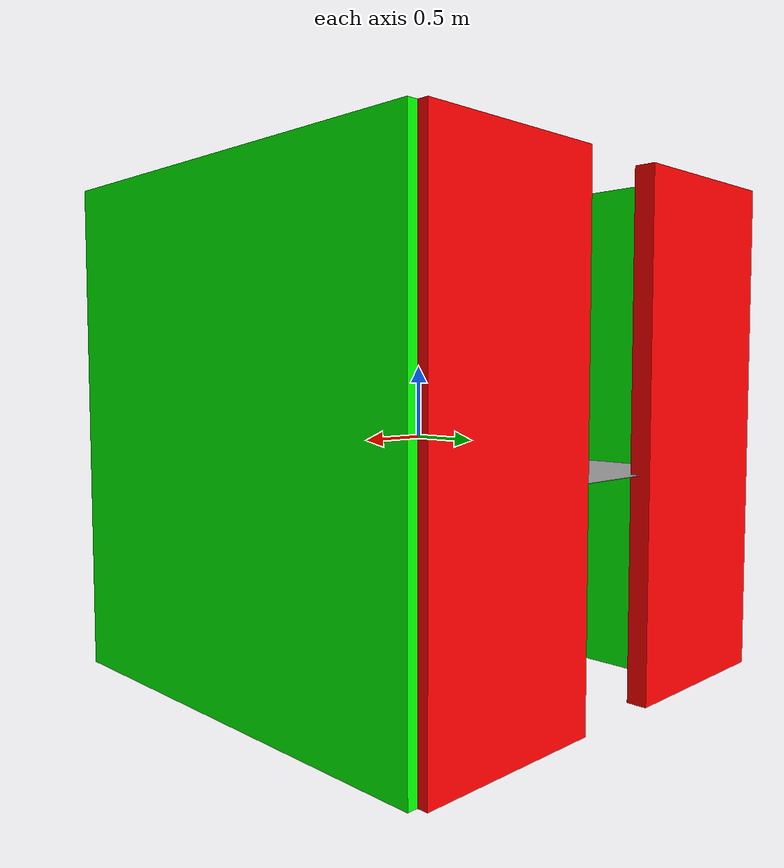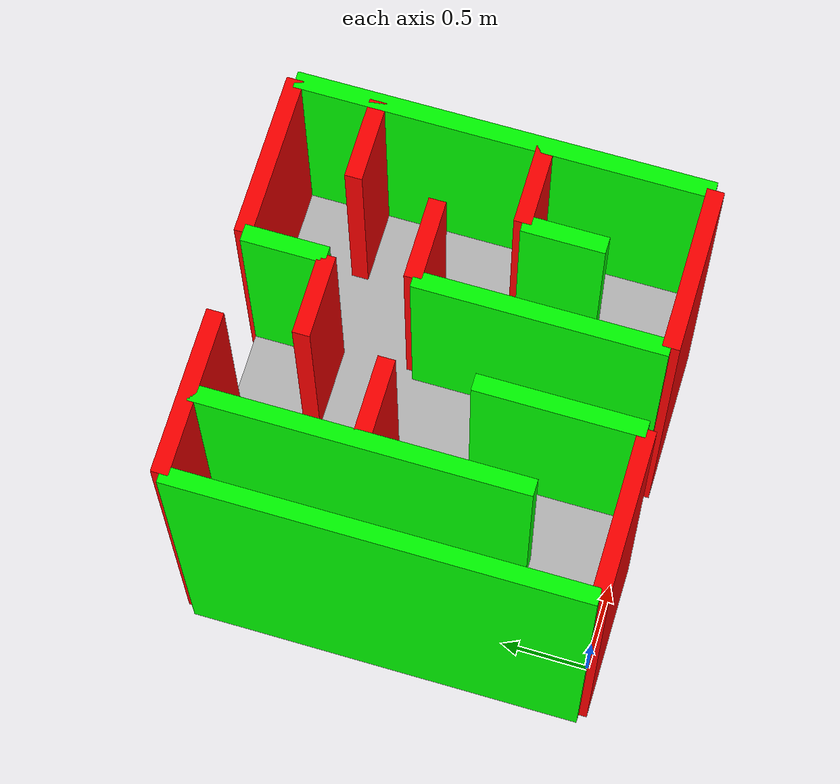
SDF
<?xml version="1.0" ?>
<sdf version="1.6">
  <model name="maze1">
    <static>true</static>
        <link name="floor">
            <pose>1.2065 1.2065 0 0 0 0</pose>
            <collision name="floor_collision">
                <geometry>
                <plane>
                    <normal>0 0 1</normal>
                    <size>2.413 2.413</size>
                </plane>
                </geometry>
            </collision>
            <visual name="floor_visual">
                <geometry>
                <plane>
                    <normal>0 0 1</normal>
                    <size>2.413 2.413</size>
                </plane>
                </geometry>
            </visual>
        </link>    <link name="wall_0">
      <pose>0.4826 0.0 0.1651 0 0 0</pose>
      <collision name="wall_0_collision">
        <geometry>
          <box>
            <size>0.9652 0.1 2.5</size>
          </box>
        </geometry>
      </collision>
      <visual name="wall_0_visual">
        <geometry>
          <box>
            <size>0.9652 0.1 2.5</size>
          </box>
        </geometry>
        <material>
          <ambient>1 0 0 1</ambient>
          <diffuse>1 0 0 1</diffuse>
          <specular>0.1 0.1 0.1 1</specular>
          <emissive>0 0 0 1</emissive>
        </material>
      </visual>
    </link>    <link name="wall_1">
      <pose>1.9304 0.0 0.1651 0 0 0</pose>
      <collision name="wall_1_collision">
        <geometry>
          <box>
            <size>0.9651999999999998 0.1 2.5</size>
          </box>
        </geometry>
      </collision>
      <visual name="wall_1_visual">
        <geometry>
          <box>
            <size>0.9651999999999998 0.1 2.5</size>
          </box>
        </geometry>
        <material>
          <ambient>1 0 0 1</ambient>
          <diffuse>1 0 0 1</diffuse>
          <specular>0.1 0.1 0.1 1</specular>
          <emissive>0 0 0 1</emissive>
        </material>
      </visual>
    </link>    <link name="wall_2">
      <pose>0.0 1.2065 0.1651 0 0 1.5707963267948966</pose>
      <collision name="wall_2_collision">
        <geometry>
          <box>
            <size>2.413 0.1 2.5</size>
          </box>
        </geometry>
      </collision>
      <visual name="wall_2_visual">
        <geometry>
          <box>
            <size>2.413 0.1 2.5</size>
          </box>
        </geometry>
        <material>
          <ambient>0 1 0 1</ambient>
          <diffuse>0 1 0 1</diffuse>
          <specular>0.1 0.1 0.1 1</specular>
          <emissive>0 0 0 1</emissive>
        </material>
      </visual>
    </link>    <link name="wall_3">
      <pose>2.413 1.2065 0.1651 0 0 1.5707963267948966</pose>
      <collision name="wall_3_collision">
        <geometry>
          <box>
            <size>2.413 0.1 2.5</size>
          </box>
        </geometry>
      </collision>
      <visual name="wall_3_visual">
        <geometry>
          <box>
            <size>2.413 0.1 2.5</size>
          </box>
        </geometry>
        <material>
          <ambient>0 1 0 1</ambient>
          <diffuse>0 1 0 1</diffuse>
          <specular>0.1 0.1 0.1 1</specular>
          <emissive>0 0 0 1</emissive>
        </material>
      </visual>
    </link>    <link name="wall_4">
      <pose>0.4826 2.413 0.1651 0 0 0</pose>
      <collision name="wall_4_collision">
        <geometry>
          <box>
            <size>0.9652 0.1 2.5</size>
          </box>
        </geometry>
      </collision>
      <visual name="wall_4_visual">
        <geometry>
          <box>
            <size>0.9652 0.1 2.5</size>
          </box>
        </geometry>
        <material>
          <ambient>1 0 0 1</ambient>
          <diffuse>1 0 0 1</diffuse>
          <specular>0.1 0.1 0.1 1</specular>
          <emissive>0 0 0 1</emissive>
        </material>
      </visual>
    </link>    <link name="wall_5">
      <pose>1.9304 2.413 0.1651 0 0 0</pose>
      <collision name="wall_5_collision">
        <geometry>
          <box>
            <size>0.9651999999999998 0.1 2.5</size>
          </box>
        </geometry>
      </collision>
      <visual name="wall_5_visual">
        <geometry>
          <box>
            <size>0.9651999999999998 0.1 2.5</size>
          </box>
        </geometry>
        <material>
          <ambient>1 0 0 1</ambient>
          <diffuse>1 0 0 1</diffuse>
          <specular>0.1 0.1 0.1 1</specular>
          <emissive>0 0 0 1</emissive>
        </material>
      </visual>
    </link>    <link name="wall_6">
      <pose>0.4826 1.4478 0.1651 0 0 1.5707963267948966</pose>
      <collision name="wall_6_collision">
        <geometry>
          <box>
            <size>1.9304 0.1 2.5</size>
          </box>
        </geometry>
      </collision>
      <visual name="wall_6_visual">
        <geometry>
          <box>
            <size>1.9304 0.1 2.5</size>
          </box>
        </geometry>
        <material>
          <ambient>0 1 0 1</ambient>
          <diffuse>0 1 0 1</diffuse>
          <specular>0.1 0.1 0.1 1</specular>
          <emissive>0 0 0 1</emissive>
        </material>
      </visual>
    </link>    <link name="wall_7">
      <pose>0.7239 1.4478 0.1651 0 0 0</pose>
      <collision name="wall_7_collision">
        <geometry>
          <box>
            <size>0.4826 0.1 2.5</size>
          </box>
        </geometry>
      </collision>
      <visual name="wall_7_visual">
        <geometry>
          <box>
            <size>0.4826 0.1 2.5</size>
          </box>
        </geometry>
        <material>
          <ambient>1 0 0 1</ambient>
          <diffuse>1 0 0 1</diffuse>
          <specular>0.1 0.1 0.1 1</specular>
          <emissive>0 0 0 1</emissive>
        </material>
      </visual>
    </link>    <link name="wall_8">
      <pose>0.9652 0.4826 0.1651 0 0 1.5707963267948966</pose>
      <collision name="wall_8_collision">
        <geometry>
          <box>
            <size>0.9652 0.1 2.5</size>
          </box>
        </geometry>
      </collision>
      <visual name="wall_8_visual">
        <geometry>
          <box>
            <size>0.9652 0.1 2.5</size>
          </box>
        </geometry>
        <material>
          <ambient>0 1 0 1</ambient>
          <diffuse>0 1 0 1</diffuse>
          <specular>0.1 0.1 0.1 1</specular>
          <emissive>0 0 0 1</emissive>
        </material>
      </visual>
    </link>    <link name="wall_9">
      <pose>1.4478 0.7239 0.1651 0 0 1.5707963267948966</pose>
      <collision name="wall_9_collision">
        <geometry>
          <box>
            <size>1.4478 0.1 2.5</size>
          </box>
        </geometry>
      </collision>
      <visual name="wall_9_visual">
        <geometry>
          <box>
            <size>1.4478 0.1 2.5</size>
          </box>
        </geometry>
        <material>
          <ambient>0 1 0 1</ambient>
          <diffuse>0 1 0 1</diffuse>
          <specular>0.1 0.1 0.1 1</specular>
          <emissive>0 0 0 1</emissive>
        </material>
      </visual>
    </link>    <link name="wall_10">
      <pose>1.6890999999999998 1.4478 0.1651 0 0 0</pose>
      <collision name="wall_10_collision">
        <geometry>
          <box>
            <size>0.4825999999999999 0.1 2.5</size>
          </box>
        </geometry>
      </collision>
      <visual name="wall_10_visual">
        <geometry>
          <box>
            <size>0.4825999999999999 0.1 2.5</size>
          </box>
        </geometry>
        <material>
          <ambient>1 0 0 1</ambient>
          <diffuse>1 0 0 1</diffuse>
          <specular>0.1 0.1 0.1 1</specular>
          <emissive>0 0 0 1</emissive>
        </material>
      </visual>
    </link>    <link name="wall_11">
      <pose>1.9304 0.7239 0.1651 0 0 1.5707963267948966</pose>
      <collision name="wall_11_collision">
        <geometry>
          <box>
            <size>0.4826 0.1 2.5</size>
          </box>
        </geometry>
      </collision>
      <visual name="wall_11_visual">
        <geometry>
          <box>
            <size>0.4826 0.1 2.5</size>
          </box>
        </geometry>
        <material>
          <ambient>0 1 0 1</ambient>
          <diffuse>0 1 0 1</diffuse>
          <specular>0.1 0.1 0.1 1</specular>
          <emissive>0 0 0 1</emissive>
        </material>
      </visual>
    </link>    <link name="wall_12">
      <pose>2.1717 0.9652 0.1651 0 0 0</pose>
      <collision name="wall_12_collision">
        <geometry>
          <box>
            <size>0.4825999999999999 0.1 2.5</size>
          </box>
        </geometry>
      </collision>
      <visual name="wall_12_visual">
        <geometry>
          <box>
            <size>0.4825999999999999 0.1 2.5</size>
          </box>
        </geometry>
        <material>
          <ambient>1 0 0 1</ambient>
          <diffuse>1 0 0 1</diffuse>
          <specular>0.1 0.1 0.1 1</specular>
          <emissive>0 0 0 1</emissive>
        </material>
      </visual>
    </link>    <link name="wall_13">
      <pose>2.1717 1.9304 0.1651 0 0 0</pose>
      <collision name="wall_13_collision">
        <geometry>
          <box>
            <size>0.4825999999999999 0.1 2.5</size>
          </box>
        </geometry>
      </collision>
      <visual name="wall_13_visual">
        <geometry>
          <box>
            <size>0.4825999999999999 0.1 2.5</size>
          </box>
        </geometry>
        <material>
          <ambient>1 0 0 1</ambient>
          <diffuse>1 0 0 1</diffuse>
          <specular>0.1 0.1 0.1 1</specular>
          <emissive>0 0 0 1</emissive>
        </material>
      </visual>
    </link>    <link name="wall_14">
      <pose>1.2065 1.9304 0.1651 0 0 0</pose>
      <collision name="wall_14_collision">
        <geometry>
          <box>
            <size>0.48260000000000003 0.1 2.5</size>
          </box>
        </geometry>
      </collision>
      <visual name="wall_14_visual">
        <geometry>
          <box>
            <size>0.48260000000000003 0.1 2.5</size>
          </box>
        </geometry>
        <material>
          <ambient>1 0 0 1</ambient>
          <diffuse>1 0 0 1</diffuse>
          <specular>0.1 0.1 0.1 1</specular>
          <emissive>0 0 0 1</emissive>
        </material>
      </visual>
    </link>    <link name="wall_15">
      <pose>1.4478 2.1717 0.1651 0 0 1.5707963267948966</pose>
      <collision name="wall_15_collision">
        <geometry>
          <box>
            <size>0.4825999999999999 0.1 2.5</size>
          </box>
        </geometry>
      </collision>
      <visual name="wall_15_visual">
        <geometry>
          <box>
            <size>0.4825999999999999 0.1 2.5</size>
          </box>
        </geometry>
        <material>
          <ambient>0 1 0 1</ambient>
          <diffuse>0 1 0 1</diffuse>
          <specular>0.1 0.1 0.1 1</specular>
          <emissive>0 0 0 1</emissive>
        </material>
      </visual>
    </link>
  </model>
</sdf>
